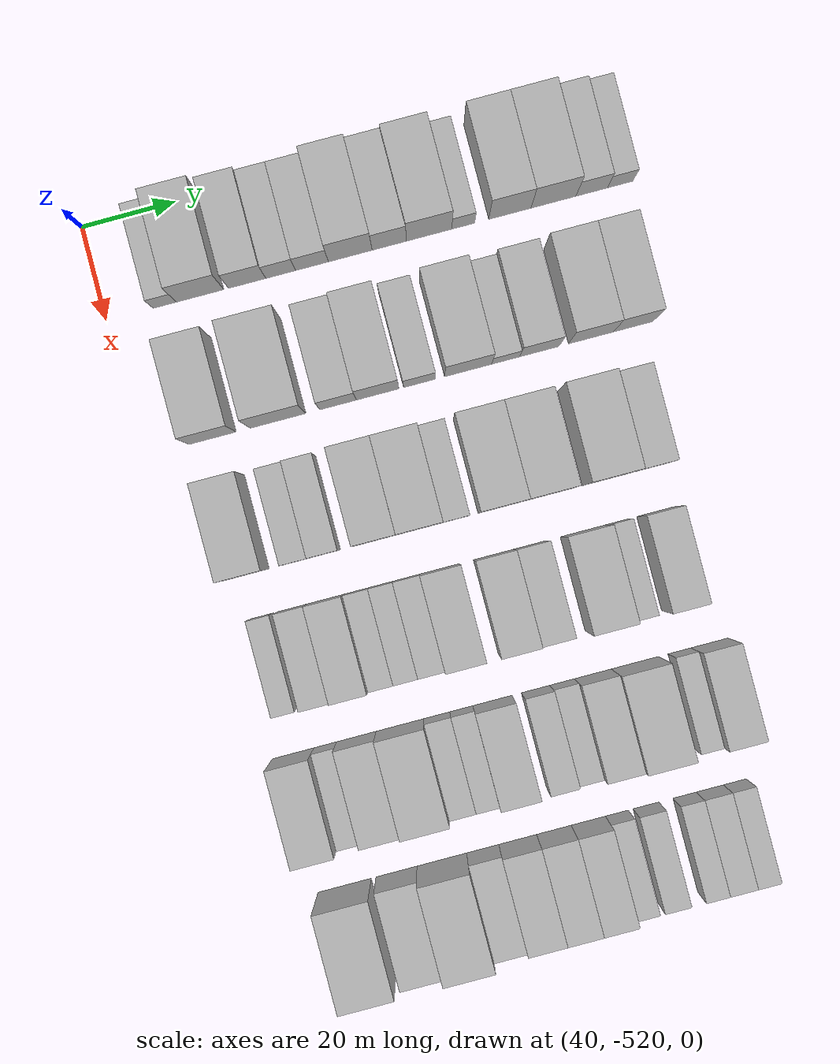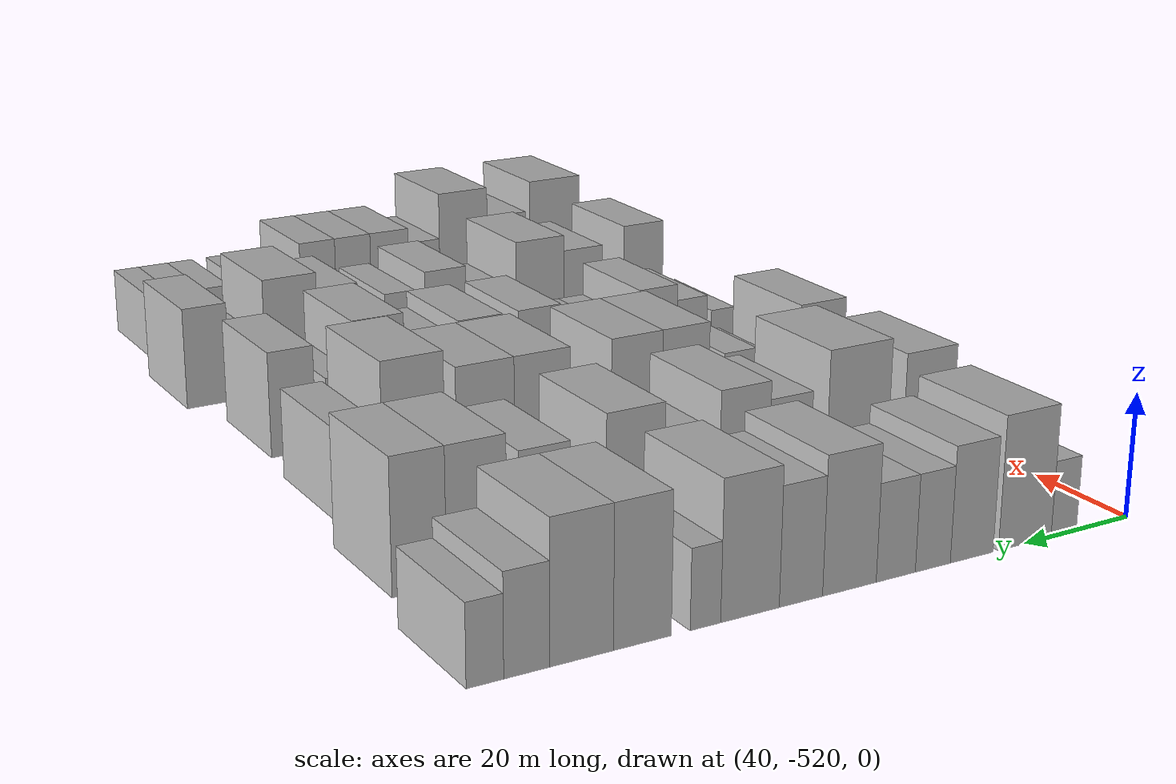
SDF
<sdf version="1.6">
 <world name="default">
  <model name="building_1">
   <static>1</static>
   <pose>50.0000 -507.5229 0 0.000000 0.000000 0.000000</pose>
   <link name="link">
    <pose>0 0 6.00 0 0 0</pose>
    <collision name="collision"><geometry><box><size>20.0000 4.9541 12.0000</size></box></geometry></collision>
    <visual name="visual">
     <cast_shadows>0</cast_shadows>
     <geometry><box><size>20.0000 4.9541 12.0000</size></box></geometry>
     <material>
      <script>
       <uri>model://HANNAS_wall/materials/scripts</uri>
       <uri>model://HANNAS_wall/materials/textures</uri>
       <name>vrc/HANNAS_wall</name>
      </script>
     </material>
    </visual>
   </link>
  </model>
  <model name="building_2">
   <static>1</static>
   <pose>50.0000 -499.9958 0 0.000000 0.000000 0.000000</pose>
   <link name="link">
    <pose>0 0 10.50 0 0 0</pose>
    <collision name="collision"><geometry><box><size>20.0000 10.1001 21.0000</size></box></geometry></collision>
    <visual name="visual">
     <cast_shadows>0</cast_shadows>
     <geometry><box><size>20.0000 10.1001 21.0000</size></box></geometry>
     <material>
      <script>
       <uri>model://HANNAS_wall/materials/scripts</uri>
       <uri>model://HANNAS_wall/materials/textures</uri>
       <name>vrc/HANNAS_wall</name>
      </script>
     </material>
    </visual>
   </link>
  </model>
  <model name="building_3">
   <static>1</static>
   <pose>50.0000 -489.9650 0 0.000000 0.000000 0.000000</pose>
   <link name="link">
    <pose>0 0 9.00 0 0 0</pose>
    <collision name="collision"><geometry><box><size>20.0000 7.9614 18.0000</size></box></geometry></collision>
    <visual name="visual">
     <cast_shadows>0</cast_shadows>
     <geometry><box><size>20.0000 7.9614 18.0000</size></box></geometry>
     <material>
      <script>
       <uri>model://HANNAS_wall/materials/scripts</uri>
       <uri>model://HANNAS_wall/materials/textures</uri>
       <name>vrc/HANNAS_wall</name>
      </script>
     </material>
    </visual>
   </link>
  </model>
  <model name="building_4">
   <static>1</static>
   <pose>50.0000 -482.8077 0 0.000000 0.000000 0.000000</pose>
   <link name="link">
    <pose>0 0 7.50 0 0 0</pose>
    <collision name="collision"><geometry><box><size>20.0000 6.3533 15.0000</size></box></geometry></collision>
    <visual name="visual">
     <cast_shadows>0</cast_shadows>
     <geometry><box><size>20.0000 6.3533 15.0000</size></box></geometry>
     <material>
      <script>
       <uri>model://HANNAS_wall/materials/scripts</uri>
       <uri>model://HANNAS_wall/materials/textures</uri>
       <name>vrc/HANNAS_wall</name>
      </script>
     </material>
    </visual>
   </link>
  </model>
  <model name="building_5">
   <static>1</static>
   <pose>50.0000 -476.1434 0 0.000000 0.000000 0.000000</pose>
   <link name="link">
    <pose>0 0 7.50 0 0 0</pose>
    <collision name="collision"><geometry><box><size>20.0000 6.9753 15.0000</size></box></geometry></collision>
    <visual name="visual">
     <cast_shadows>0</cast_shadows>
     <geometry><box><size>20.0000 6.9753 15.0000</size></box></geometry>
     <material>
      <script>
       <uri>model://HANNAS_wall/materials/scripts</uri>
       <uri>model://HANNAS_wall/materials/textures</uri>
       <name>vrc/HANNAS_wall</name>
      </script>
     </material>
    </visual>
   </link>
  </model>
  <model name="building_6">
   <static>1</static>
   <pose>50.0000 -468.0025 0 0.000000 0.000000 0.000000</pose>
   <link name="link">
    <pose>0 0 10.50 0 0 0</pose>
    <collision name="collision"><geometry><box><size>20.0000 9.3064 21.0000</size></box></geometry></collision>
    <visual name="visual">
     <cast_shadows>0</cast_shadows>
     <geometry><box><size>20.0000 9.3064 21.0000</size></box></geometry>
     <material>
      <script>
       <uri>model://HANNAS_wall/materials/scripts</uri>
       <uri>model://HANNAS_wall/materials/textures</uri>
       <name>vrc/HANNAS_wall</name>
      </script>
     </material>
    </visual>
   </link>
  </model>
  <model name="building_7">
   <static>1</static>
   <pose>50.0000 -459.6872 0 0.000000 0.000000 0.000000</pose>
   <link name="link">
    <pose>0 0 9.00 0 0 0</pose>
    <collision name="collision"><geometry><box><size>20.0000 7.3243 18.0000</size></box></geometry></collision>
    <visual name="visual">
     <cast_shadows>0</cast_shadows>
     <geometry><box><size>20.0000 7.3243 18.0000</size></box></geometry>
     <material>
      <script>
       <uri>model://HANNAS_wall/materials/scripts</uri>
       <uri>model://HANNAS_wall/materials/textures</uri>
       <name>vrc/HANNAS_wall</name>
      </script>
     </material>
    </visual>
   </link>
  </model>
  <model name="building_8">
   <static>1</static>
   <pose>50.0000 -451.2077 0 0.000000 0.000000 0.000000</pose>
   <link name="link">
    <pose>0 0 10.50 0 0 0</pose>
    <collision name="collision"><geometry><box><size>20.0000 9.6346 21.0000</size></box></geometry></collision>
    <visual name="visual">
     <cast_shadows>0</cast_shadows>
     <geometry><box><size>20.0000 9.6346 21.0000</size></box></geometry>
     <material>
      <script>
       <uri>model://HANNAS_wall/materials/scripts</uri>
       <uri>model://HANNAS_wall/materials/textures</uri>
       <name>vrc/HANNAS_wall</name>
      </script>
     </material>
    </visual>
   </link>
  </model>
  <model name="building_9">
   <static>1</static>
   <pose>50.0000 -443.9438 0 0.000000 0.000000 0.000000</pose>
   <link name="link">
    <pose>0 0 6.00 0 0 0</pose>
    <collision name="collision"><geometry><box><size>20.0000 4.8932 12.0000</size></box></geometry></collision>
    <visual name="visual">
     <cast_shadows>0</cast_shadows>
     <geometry><box><size>20.0000 4.8932 12.0000</size></box></geometry>
     <material>
      <script>
       <uri>model://HANNAS_wall/materials/scripts</uri>
       <uri>model://HANNAS_wall/materials/textures</uri>
       <name>vrc/HANNAS_wall</name>
      </script>
     </material>
    </visual>
   </link>
  </model>
  <model name="building_10">
   <static>1</static>
   <pose>50.0000 -434.0024 0 0.000000 0.000000 0.000000</pose>
   <link name="link">
    <pose>0 0 10.50 0 0 0</pose>
    <collision name="collision"><geometry><box><size>20.0000 8.9897 21.0000</size></box></geometry></collision>
    <visual name="visual">
     <cast_shadows>0</cast_shadows>
     <geometry><box><size>20.0000 8.9897 21.0000</size></box></geometry>
     <material>
      <script>
       <uri>model://HANNAS_wall/materials/scripts</uri>
       <uri>model://HANNAS_wall/materials/textures</uri>
       <name>vrc/HANNAS_wall</name>
      </script>
     </material>
    </visual>
   </link>
  </model>
  <model name="building_11">
   <static>1</static>
   <pose>50.0000 -424.7182 0 0.000000 0.000000 0.000000</pose>
   <link name="link">
    <pose>0 0 10.50 0 0 0</pose>
    <collision name="collision"><geometry><box><size>20.0000 9.5786 21.0000</size></box></geometry></collision>
    <visual name="visual">
     <cast_shadows>0</cast_shadows>
     <geometry><box><size>20.0000 9.5786 21.0000</size></box></geometry>
     <material>
      <script>
       <uri>model://HANNAS_wall/materials/scripts</uri>
       <uri>model://HANNAS_wall/materials/textures</uri>
       <name>vrc/HANNAS_wall</name>
      </script>
     </material>
    </visual>
   </link>
  </model>
  <model name="building_12">
   <static>1</static>
   <pose>50.0000 -416.5650 0 0.000000 0.000000 0.000000</pose>
   <link name="link">
    <pose>0 0 7.50 0 0 0</pose>
    <collision name="collision"><geometry><box><size>20.0000 6.7279 15.0000</size></box></geometry></collision>
    <visual name="visual">
     <cast_shadows>0</cast_shadows>
     <geometry><box><size>20.0000 6.7279 15.0000</size></box></geometry>
     <material>
      <script>
       <uri>model://HANNAS_wall/materials/scripts</uri>
       <uri>model://HANNAS_wall/materials/textures</uri>
       <name>vrc/HANNAS_wall</name>
      </script>
     </material>
    </visual>
   </link>
  </model>
  <model name="building_13">
   <static>1</static>
   <pose>50.0000 -410.5036 0 0.000000 0.000000 0.000000</pose>
   <link name="link">
    <pose>0 0 6.00 0 0 0</pose>
    <collision name="collision"><geometry><box><size>20.0000 5.3949 12.0000</size></box></geometry></collision>
    <visual name="visual">
     <cast_shadows>0</cast_shadows>
     <geometry><box><size>20.0000 5.3949 12.0000</size></box></geometry>
     <material>
      <script>
       <uri>model://HANNAS_wall/materials/scripts</uri>
       <uri>model://HANNAS_wall/materials/textures</uri>
       <name>vrc/HANNAS_wall</name>
      </script>
     </material>
    </visual>
   </link>
  </model>
  <model name="building_121">
   <static>1</static>
   <pose>79.0000 -504.9951 0 0.000000 0.000000 0.000000</pose>
   <link name="link">
    <pose>0 0 10.50 0 0 0</pose>
    <collision name="collision"><geometry><box><size>20.0000 10.0098 21.0000</size></box></geometry></collision>
    <visual name="visual">
     <cast_shadows>0</cast_shadows>
     <geometry><box><size>20.0000 10.0098 21.0000</size></box></geometry>
     <material>
      <script>
       <uri>model://HANNAS_wall/materials/scripts</uri>
       <uri>model://HANNAS_wall/materials/textures</uri>
       <name>vrc/HANNAS_wall</name>
      </script>
     </material>
    </visual>
   </link>
  </model>
  <model name="building_122">
   <static>1</static>
   <pose>79.0000 -491.0582 0 0.000000 0.000000 0.000000</pose>
   <link name="link">
    <pose>0 0 12.00 0 0 0</pose>
    <collision name="collision"><geometry><box><size>20.0000 11.8640 24.0000</size></box></geometry></collision>
    <visual name="visual">
     <cast_shadows>0</cast_shadows>
     <geometry><box><size>20.0000 11.8640 24.0000</size></box></geometry>
     <material>
      <script>
       <uri>model://HANNAS_wall/materials/scripts</uri>
       <uri>model://HANNAS_wall/materials/textures</uri>
       <name>vrc/HANNAS_wall</name>
      </script>
     </material>
    </visual>
   </link>
  </model>
  <model name="building_123">
   <static>1</static>
   <pose>79.0000 -478.2333 0 0.000000 0.000000 0.000000</pose>
   <link name="link">
    <pose>0 0 9.00 0 0 0</pose>
    <collision name="collision"><geometry><box><size>20.0000 7.7858 18.0000</size></box></geometry></collision>
    <visual name="visual">
     <cast_shadows>0</cast_shadows>
     <geometry><box><size>20.0000 7.7858 18.0000</size></box></geometry>
     <material>
      <script>
       <uri>model://HANNAS_wall/materials/scripts</uri>
       <uri>model://HANNAS_wall/materials/textures</uri>
       <name>vrc/HANNAS_wall</name>
      </script>
     </material>
    </visual>
   </link>
  </model>
  <model name="building_124">
   <static>1</static>
   <pose>79.0000 -469.8280 0 0.000000 0.000000 0.000000</pose>
   <link name="link">
    <pose>0 0 10.50 0 0 0</pose>
    <collision name="collision"><geometry><box><size>20.0000 9.0248 21.0000</size></box></geometry></collision>
    <visual name="visual">
     <cast_shadows>0</cast_shadows>
     <geometry><box><size>20.0000 9.0248 21.0000</size></box></geometry>
     <material>
      <script>
       <uri>model://HANNAS_wall/materials/scripts</uri>
       <uri>model://HANNAS_wall/materials/textures</uri>
       <name>vrc/HANNAS_wall</name>
      </script>
     </material>
    </visual>
   </link>
  </model>
  <model name="building_125">
   <static>1</static>
   <pose>79.0000 -460.9591 0 0.000000 0.000000 0.000000</pose>
   <link name="link">
    <pose>0 0 7.50 0 0 0</pose>
    <collision name="collision"><geometry><box><size>20.0000 6.7131 15.0000</size></box></geometry></collision>
    <visual name="visual">
     <cast_shadows>0</cast_shadows>
     <geometry><box><size>20.0000 6.7131 15.0000</size></box></geometry>
     <material>
      <script>
       <uri>model://HANNAS_wall/materials/scripts</uri>
       <uri>model://HANNAS_wall/materials/textures</uri>
       <name>vrc/HANNAS_wall</name>
      </script>
     </material>
    </visual>
   </link>
  </model>
  <model name="building_126">
   <static>1</static>
   <pose>79.0000 -450.5981 0 0.000000 0.000000 0.000000</pose>
   <link name="link">
    <pose>0 0 10.50 0 0 0</pose>
    <collision name="collision"><geometry><box><size>20.0000 10.0088 21.0000</size></box></geometry></collision>
    <visual name="visual">
     <cast_shadows>0</cast_shadows>
     <geometry><box><size>20.0000 10.0088 21.0000</size></box></geometry>
     <material>
      <script>
       <uri>model://HANNAS_wall/materials/scripts</uri>
       <uri>model://HANNAS_wall/materials/textures</uri>
       <name>vrc/HANNAS_wall</name>
      </script>
     </material>
    </visual>
   </link>
  </model>
  <model name="building_127">
   <static>1</static>
   <pose>79.0000 -442.6111 0 0.000000 0.000000 0.000000</pose>
   <link name="link">
    <pose>0 0 6.00 0 0 0</pose>
    <collision name="collision"><geometry><box><size>20.0000 5.9652 12.0000</size></box></geometry></collision>
    <visual name="visual">
     <cast_shadows>0</cast_shadows>
     <geometry><box><size>20.0000 5.9652 12.0000</size></box></geometry>
     <material>
      <script>
       <uri>model://HANNAS_wall/materials/scripts</uri>
       <uri>model://HANNAS_wall/materials/textures</uri>
       <name>vrc/HANNAS_wall</name>
      </script>
     </material>
    </visual>
   </link>
  </model>
  <model name="building_128">
   <static>1</static>
   <pose>79.0000 -435.4125 0 0.000000 0.000000 0.000000</pose>
   <link name="link">
    <pose>0 0 9.00 0 0 0</pose>
    <collision name="collision"><geometry><box><size>20.0000 8.4320 18.0000</size></box></geometry></collision>
    <visual name="visual">
     <cast_shadows>0</cast_shadows>
     <geometry><box><size>20.0000 8.4320 18.0000</size></box></geometry>
     <material>
      <script>
       <uri>model://HANNAS_wall/materials/scripts</uri>
       <uri>model://HANNAS_wall/materials/textures</uri>
       <name>vrc/HANNAS_wall</name>
      </script>
     </material>
    </visual>
   </link>
  </model>
  <model name="building_129">
   <static>1</static>
   <pose>79.0000 -424.3996 0 0.000000 0.000000 0.000000</pose>
   <link name="link">
    <pose>0 0 10.50 0 0 0</pose>
    <collision name="collision"><geometry><box><size>20.0000 9.5937 21.0000</size></box></geometry></collision>
    <visual name="visual">
     <cast_shadows>0</cast_shadows>
     <geometry><box><size>20.0000 9.5937 21.0000</size></box></geometry>
     <material>
      <script>
       <uri>model://HANNAS_wall/materials/scripts</uri>
       <uri>model://HANNAS_wall/materials/textures</uri>
       <name>vrc/HANNAS_wall</name>
      </script>
     </material>
    </visual>
   </link>
  </model>
  <model name="building_130">
   <static>1</static>
   <pose>79.0000 -415.3789 0 0.000000 0.000000 0.000000</pose>
   <link name="link">
    <pose>0 0 10.50 0 0 0</pose>
    <collision name="collision"><geometry><box><size>20.0000 8.4477 21.0000</size></box></geometry></collision>
    <visual name="visual">
     <cast_shadows>0</cast_shadows>
     <geometry><box><size>20.0000 8.4477 21.0000</size></box></geometry>
     <material>
      <script>
       <uri>model://HANNAS_wall/materials/scripts</uri>
       <uri>model://HANNAS_wall/materials/textures</uri>
       <name>vrc/HANNAS_wall</name>
      </script>
     </material>
    </visual>
   </link>
  </model>
  <model name="building_237">
   <static>1</static>
   <pose>108.0000 -505.3140 0 0.000000 0.000000 0.000000</pose>
   <link name="link">
    <pose>0 0 10.50 0 0 0</pose>
    <collision name="collision"><geometry><box><size>20.0000 9.3721 21.0000</size></box></geometry></collision>
    <visual name="visual">
     <cast_shadows>0</cast_shadows>
     <geometry><box><size>20.0000 9.3721 21.0000</size></box></geometry>
     <material>
      <script>
       <uri>model://HANNAS_wall/materials/scripts</uri>
       <uri>model://HANNAS_wall/materials/textures</uri>
       <name>vrc/HANNAS_wall</name>
      </script>
     </material>
    </visual>
   </link>
  </model>
  <model name="building_238">
   <static>1</static>
   <pose>108.0000 -494.7205 0 0.000000 0.000000 0.000000</pose>
   <link name="link">
    <pose>0 0 6.00 0 0 0</pose>
    <collision name="collision"><geometry><box><size>20.0000 5.8149 12.0000</size></box></geometry></collision>
    <visual name="visual">
     <cast_shadows>0</cast_shadows>
     <geometry><box><size>20.0000 5.8149 12.0000</size></box></geometry>
     <material>
      <script>
       <uri>model://HANNAS_wall/materials/scripts</uri>
       <uri>model://HANNAS_wall/materials/textures</uri>
       <name>vrc/HANNAS_wall</name>
      </script>
     </material>
    </visual>
   </link>
  </model>
  <model name="building_239">
   <static>1</static>
   <pose>108.0000 -488.6256 0 0.000000 0.000000 0.000000</pose>
   <link name="link">
    <pose>0 0 7.50 0 0 0</pose>
    <collision name="collision"><geometry><box><size>20.0000 6.3748 15.0000</size></box></geometry></collision>
    <visual name="visual">
     <cast_shadows>0</cast_shadows>
     <geometry><box><size>20.0000 6.3748 15.0000</size></box></geometry>
     <material>
      <script>
       <uri>model://HANNAS_wall/materials/scripts</uri>
       <uri>model://HANNAS_wall/materials/textures</uri>
       <name>vrc/HANNAS_wall</name>
      </script>
     </material>
    </visual>
   </link>
  </model>
  <model name="building_240">
   <static>1</static>
   <pose>108.0000 -477.9311 0 0.000000 0.000000 0.000000</pose>
   <link name="link">
    <pose>0 0 10.50 0 0 0</pose>
    <collision name="collision"><geometry><box><size>20.0000 9.0142 21.0000</size></box></geometry></collision>
    <visual name="visual">
     <cast_shadows>0</cast_shadows>
     <geometry><box><size>20.0000 9.0142 21.0000</size></box></geometry>
     <material>
      <script>
       <uri>model://HANNAS_wall/materials/scripts</uri>
       <uri>model://HANNAS_wall/materials/textures</uri>
       <name>vrc/HANNAS_wall</name>
      </script>
     </material>
    </visual>
   </link>
  </model>
  <model name="building_241">
   <static>1</static>
   <pose>108.0000 -468.5965 0 0.000000 0.000000 0.000000</pose>
   <link name="link">
    <pose>0 0 10.50 0 0 0</pose>
    <collision name="collision"><geometry><box><size>20.0000 9.6549 21.0000</size></box></geometry></collision>
    <visual name="visual">
     <cast_shadows>0</cast_shadows>
     <geometry><box><size>20.0000 9.6549 21.0000</size></box></geometry>
     <material>
      <script>
       <uri>model://HANNAS_wall/materials/scripts</uri>
       <uri>model://HANNAS_wall/materials/textures</uri>
       <name>vrc/HANNAS_wall</name>
      </script>
     </material>
    </visual>
   </link>
  </model>
  <model name="building_242">
   <static>1</static>
   <pose>108.0000 -460.9574 0 0.000000 0.000000 0.000000</pose>
   <link name="link">
    <pose>0 0 6.00 0 0 0</pose>
    <collision name="collision"><geometry><box><size>20.0000 5.6233 12.0000</size></box></geometry></collision>
    <visual name="visual">
     <cast_shadows>0</cast_shadows>
     <geometry><box><size>20.0000 5.6233 12.0000</size></box></geometry>
     <material>
      <script>
       <uri>model://HANNAS_wall/materials/scripts</uri>
       <uri>model://HANNAS_wall/materials/textures</uri>
       <name>vrc/HANNAS_wall</name>
      </script>
     </material>
    </visual>
   </link>
  </model>
  <model name="building_243">
   <static>1</static>
   <pose>108.0000 -451.1342 0 0.000000 0.000000 0.000000</pose>
   <link name="link">
    <pose>0 0 10.50 0 0 0</pose>
    <collision name="collision"><geometry><box><size>20.0000 10.0233 21.0000</size></box></geometry></collision>
    <visual name="visual">
     <cast_shadows>0</cast_shadows>
     <geometry><box><size>20.0000 10.0233 21.0000</size></box></geometry>
     <material>
      <script>
       <uri>model://HANNAS_wall/materials/scripts</uri>
       <uri>model://HANNAS_wall/materials/textures</uri>
       <name>vrc/HANNAS_wall</name>
      </script>
     </material>
    </visual>
   </link>
  </model>
  <model name="building_244">
   <static>1</static>
   <pose>108.0000 -441.0315 0 0.000000 0.000000 0.000000</pose>
   <link name="link">
    <pose>0 0 10.50 0 0 0</pose>
    <collision name="collision"><geometry><box><size>20.0000 10.1822 21.0000</size></box></geometry></collision>
    <visual name="visual">
     <cast_shadows>0</cast_shadows>
     <geometry><box><size>20.0000 10.1822 21.0000</size></box></geometry>
     <material>
      <script>
       <uri>model://HANNAS_wall/materials/scripts</uri>
       <uri>model://HANNAS_wall/materials/textures</uri>
       <name>vrc/HANNAS_wall</name>
      </script>
     </material>
    </visual>
   </link>
  </model>
  <model name="building_245">
   <static>1</static>
   <pose>108.0000 -428.6628 0 0.000000 0.000000 0.000000</pose>
   <link name="link">
    <pose>0 0 12.00 0 0 0</pose>
    <collision name="collision"><geometry><box><size>20.0000 10.5551 24.0000</size></box></geometry></collision>
    <visual name="visual">
     <cast_shadows>0</cast_shadows>
     <geometry><box><size>20.0000 10.5551 24.0000</size></box></geometry>
     <material>
      <script>
       <uri>model://HANNAS_wall/materials/scripts</uri>
       <uri>model://HANNAS_wall/materials/textures</uri>
       <name>vrc/HANNAS_wall</name>
      </script>
     </material>
    </visual>
   </link>
  </model>
  <model name="building_246">
   <static>1</static>
   <pose>108.0000 -418.8435 0 0.000000 0.000000 0.000000</pose>
   <link name="link">
    <pose>0 0 7.50 0 0 0</pose>
    <collision name="collision"><geometry><box><size>20.0000 7.0836 15.0000</size></box></geometry></collision>
    <visual name="visual">
     <cast_shadows>0</cast_shadows>
     <geometry><box><size>20.0000 7.0836 15.0000</size></box></geometry>
     <material>
      <script>
       <uri>model://HANNAS_wall/materials/scripts</uri>
       <uri>model://HANNAS_wall/materials/textures</uri>
       <name>vrc/HANNAS_wall</name>
      </script>
     </material>
    </visual>
   </link>
  </model>
  <model name="building_353">
   <static>1</static>
   <pose>137.0000 -504.5582 0 0.000000 0.000000 0.000000</pose>
   <link name="link">
    <pose>0 0 6.00 0 0 0</pose>
    <collision name="collision"><geometry><box><size>20.0000 4.8837 12.0000</size></box></geometry></collision>
    <visual name="visual">
     <cast_shadows>0</cast_shadows>
     <geometry><box><size>20.0000 4.8837 12.0000</size></box></geometry>
     <material>
      <script>
       <uri>model://HANNAS_wall/materials/scripts</uri>
       <uri>model://HANNAS_wall/materials/textures</uri>
       <name>vrc/HANNAS_wall</name>
      </script>
     </material>
    </visual>
   </link>
  </model>
  <model name="building_354">
   <static>1</static>
   <pose>137.0000 -497.9300 0 0.000000 0.000000 0.000000</pose>
   <link name="link">
    <pose>0 0 7.50 0 0 0</pose>
    <collision name="collision"><geometry><box><size>20.0000 6.3728 15.0000</size></box></geometry></collision>
    <visual name="visual">
     <cast_shadows>0</cast_shadows>
     <geometry><box><size>20.0000 6.3728 15.0000</size></box></geometry>
     <material>
      <script>
       <uri>model://HANNAS_wall/materials/scripts</uri>
       <uri>model://HANNAS_wall/materials/textures</uri>
       <name>vrc/HANNAS_wall</name>
      </script>
     </material>
    </visual>
   </link>
  </model>
  <model name="building_355">
   <static>1</static>
   <pose>137.0000 -490.8542 0 0.000000 0.000000 0.000000</pose>
   <link name="link">
    <pose>0 0 9.00 0 0 0</pose>
    <collision name="collision"><geometry><box><size>20.0000 7.7787 18.0000</size></box></geometry></collision>
    <visual name="visual">
     <cast_shadows>0</cast_shadows>
     <geometry><box><size>20.0000 7.7787 18.0000</size></box></geometry>
     <material>
      <script>
       <uri>model://HANNAS_wall/materials/scripts</uri>
       <uri>model://HANNAS_wall/materials/textures</uri>
       <name>vrc/HANNAS_wall</name>
      </script>
     </material>
    </visual>
   </link>
  </model>
  <model name="building_356">
   <static>1</static>
   <pose>137.0000 -484.3512 0 0.000000 0.000000 0.000000</pose>
   <link name="link">
    <pose>0 0 6.00 0 0 0</pose>
    <collision name="collision"><geometry><box><size>20.0000 5.2274 12.0000</size></box></geometry></collision>
    <visual name="visual">
     <cast_shadows>0</cast_shadows>
     <geometry><box><size>20.0000 5.2274 12.0000</size></box></geometry>
     <material>
      <script>
       <uri>model://HANNAS_wall/materials/scripts</uri>
       <uri>model://HANNAS_wall/materials/textures</uri>
       <name>vrc/HANNAS_wall</name>
      </script>
     </material>
    </visual>
   </link>
  </model>
  <model name="building_357">
   <static>1</static>
   <pose>137.0000 -479.1863 0 0.000000 0.000000 0.000000</pose>
   <link name="link">
    <pose>0 0 6.00 0 0 0</pose>
    <collision name="collision"><geometry><box><size>20.0000 5.1023 12.0000</size></box></geometry></collision>
    <visual name="visual">
     <cast_shadows>0</cast_shadows>
     <geometry><box><size>20.0000 5.1023 12.0000</size></box></geometry>
     <material>
      <script>
       <uri>model://HANNAS_wall/materials/scripts</uri>
       <uri>model://HANNAS_wall/materials/textures</uri>
       <name>vrc/HANNAS_wall</name>
      </script>
     </material>
    </visual>
   </link>
  </model>
  <model name="building_358">
   <static>1</static>
   <pose>137.0000 -473.8029 0 0.000000 0.000000 0.000000</pose>
   <link name="link">
    <pose>0 0 6.00 0 0 0</pose>
    <collision name="collision"><geometry><box><size>20.0000 5.6645 12.0000</size></box></geometry></collision>
    <visual name="visual">
     <cast_shadows>0</cast_shadows>
     <geometry><box><size>20.0000 5.6645 12.0000</size></box></geometry>
     <material>
      <script>
       <uri>model://HANNAS_wall/materials/scripts</uri>
       <uri>model://HANNAS_wall/materials/textures</uri>
       <name>vrc/HANNAS_wall</name>
      </script>
     </material>
    </visual>
   </link>
  </model>
  <model name="building_359">
   <static>1</static>
   <pose>137.0000 -466.7512 0 0.000000 0.000000 0.000000</pose>
   <link name="link">
    <pose>0 0 9.00 0 0 0</pose>
    <collision name="collision"><geometry><box><size>20.0000 8.4388 18.0000</size></box></geometry></collision>
    <visual name="visual">
     <cast_shadows>0</cast_shadows>
     <geometry><box><size>20.0000 8.4388 18.0000</size></box></geometry>
     <material>
      <script>
       <uri>model://HANNAS_wall/materials/scripts</uri>
       <uri>model://HANNAS_wall/materials/textures</uri>
       <name>vrc/HANNAS_wall</name>
      </script>
     </material>
    </visual>
   </link>
  </model>
  <model name="building_360">
   <static>1</static>
   <pose>137.0000 -455.3264 0 0.000000 0.000000 0.000000</pose>
   <link name="link">
    <pose>0 0 9.00 0 0 0</pose>
    <collision name="collision"><geometry><box><size>20.0000 8.4108 18.0000</size></box></geometry></collision>
    <visual name="visual">
     <cast_shadows>0</cast_shadows>
     <geometry><box><size>20.0000 8.4108 18.0000</size></box></geometry>
     <material>
      <script>
       <uri>model://HANNAS_wall/materials/scripts</uri>
       <uri>model://HANNAS_wall/materials/textures</uri>
       <name>vrc/HANNAS_wall</name>
      </script>
     </material>
    </visual>
   </link>
  </model>
  <model name="building_361">
   <static>1</static>
   <pose>137.0000 -447.5767 0 0.000000 0.000000 0.000000</pose>
   <link name="link">
    <pose>0 0 7.50 0 0 0</pose>
    <collision name="collision"><geometry><box><size>20.0000 7.0886 15.0000</size></box></geometry></collision>
    <visual name="visual">
     <cast_shadows>0</cast_shadows>
     <geometry><box><size>20.0000 7.0886 15.0000</size></box></geometry>
     <material>
      <script>
       <uri>model://HANNAS_wall/materials/scripts</uri>
       <uri>model://HANNAS_wall/materials/textures</uri>
       <name>vrc/HANNAS_wall</name>
      </script>
     </material>
    </visual>
   </link>
  </model>
  <model name="building_362">
   <static>1</static>
   <pose>137.0000 -436.3723 0 0.000000 0.000000 0.000000</pose>
   <link name="link">
    <pose>0 0 10.50 0 0 0</pose>
    <collision name="collision"><geometry><box><size>20.0000 9.3204 21.0000</size></box></geometry></collision>
    <visual name="visual">
     <cast_shadows>0</cast_shadows>
     <geometry><box><size>20.0000 9.3204 21.0000</size></box></geometry>
     <material>
      <script>
       <uri>model://HANNAS_wall/materials/scripts</uri>
       <uri>model://HANNAS_wall/materials/textures</uri>
       <name>vrc/HANNAS_wall</name>
      </script>
     </material>
    </visual>
   </link>
  </model>
  <model name="building_363">
   <static>1</static>
   <pose>137.0000 -429.2212 0 0.000000 0.000000 0.000000</pose>
   <link name="link">
    <pose>0 0 6.00 0 0 0</pose>
    <collision name="collision"><geometry><box><size>20.0000 4.9818 12.0000</size></box></geometry></collision>
    <visual name="visual">
     <cast_shadows>0</cast_shadows>
     <geometry><box><size>20.0000 4.9818 12.0000</size></box></geometry>
     <material>
      <script>
       <uri>model://HANNAS_wall/materials/scripts</uri>
       <uri>model://HANNAS_wall/materials/textures</uri>
       <name>vrc/HANNAS_wall</name>
      </script>
     </material>
    </visual>
   </link>
  </model>
  <model name="building_364">
   <static>1</static>
   <pose>137.0000 -420.7906 0 0.000000 0.000000 0.000000</pose>
   <link name="link">
    <pose>0 0 9.00 0 0 0</pose>
    <collision name="collision"><geometry><box><size>20.0000 7.8792 18.0000</size></box></geometry></collision>
    <visual name="visual">
     <cast_shadows>0</cast_shadows>
     <geometry><box><size>20.0000 7.8792 18.0000</size></box></geometry>
     <material>
      <script>
       <uri>model://HANNAS_wall/materials/scripts</uri>
       <uri>model://HANNAS_wall/materials/textures</uri>
       <name>vrc/HANNAS_wall</name>
      </script>
     </material>
    </visual>
   </link>
  </model>
  <model name="building_461">
   <static>1</static>
   <pose>166.0000 -505.5836 0 0.000000 0.000000 0.000000</pose>
   <link name="link">
    <pose>0 0 10.50 0 0 0</pose>
    <collision name="collision"><geometry><box><size>20.0000 8.8328 21.0000</size></box></geometry></collision>
    <visual name="visual">
     <cast_shadows>0</cast_shadows>
     <geometry><box><size>20.0000 8.8328 21.0000</size></box></geometry>
     <material>
      <script>
       <uri>model://HANNAS_wall/materials/scripts</uri>
       <uri>model://HANNAS_wall/materials/textures</uri>
       <name>vrc/HANNAS_wall</name>
      </script>
     </material>
    </visual>
   </link>
  </model>
  <model name="building_462">
   <static>1</static>
   <pose>166.0000 -498.7571 0 0.000000 0.000000 0.000000</pose>
   <link name="link">
    <pose>0 0 6.00 0 0 0</pose>
    <collision name="collision"><geometry><box><size>20.0000 4.8202 12.0000</size></box></geometry></collision>
    <visual name="visual">
     <cast_shadows>0</cast_shadows>
     <geometry><box><size>20.0000 4.8202 12.0000</size></box></geometry>
     <material>
      <script>
       <uri>model://HANNAS_wall/materials/scripts</uri>
       <uri>model://HANNAS_wall/materials/textures</uri>
       <name>vrc/HANNAS_wall</name>
      </script>
     </material>
    </visual>
   </link>
  </model>
  <model name="building_463">
   <static>1</static>
   <pose>166.0000 -492.1525 0 0.000000 0.000000 0.000000</pose>
   <link name="link">
    <pose>0 0 9.00 0 0 0</pose>
    <collision name="collision"><geometry><box><size>20.0000 8.3890 18.0000</size></box></geometry></collision>
    <visual name="visual">
     <cast_shadows>0</cast_shadows>
     <geometry><box><size>20.0000 8.3890 18.0000</size></box></geometry>
     <material>
      <script>
       <uri>model://HANNAS_wall/materials/scripts</uri>
       <uri>model://HANNAS_wall/materials/textures</uri>
       <name>vrc/HANNAS_wall</name>
      </script>
     </material>
    </visual>
   </link>
  </model>
  <model name="building_464">
   <static>1</static>
   <pose>166.0000 -482.8787 0 0.000000 0.000000 0.000000</pose>
   <link name="link">
    <pose>0 0 10.50 0 0 0</pose>
    <collision name="collision"><geometry><box><size>20.0000 10.1585 21.0000</size></box></geometry></collision>
    <visual name="visual">
     <cast_shadows>0</cast_shadows>
     <geometry><box><size>20.0000 10.1585 21.0000</size></box></geometry>
     <material>
      <script>
       <uri>model://HANNAS_wall/materials/scripts</uri>
       <uri>model://HANNAS_wall/materials/textures</uri>
       <name>vrc/HANNAS_wall</name>
      </script>
     </material>
    </visual>
   </link>
  </model>
  <model name="building_465">
   <static>1</static>
   <pose>166.0000 -475.0251 0 0.000000 0.000000 0.000000</pose>
   <link name="link">
    <pose>0 0 6.00 0 0 0</pose>
    <collision name="collision"><geometry><box><size>20.0000 5.5489 12.0000</size></box></geometry></collision>
    <visual name="visual">
     <cast_shadows>0</cast_shadows>
     <geometry><box><size>20.0000 5.5489 12.0000</size></box></geometry>
     <material>
      <script>
       <uri>model://HANNAS_wall/materials/scripts</uri>
       <uri>model://HANNAS_wall/materials/textures</uri>
       <name>vrc/HANNAS_wall</name>
      </script>
     </material>
    </visual>
   </link>
  </model>
  <model name="building_466">
   <static>1</static>
   <pose>166.0000 -469.8018 0 0.000000 0.000000 0.000000</pose>
   <link name="link">
    <pose>0 0 6.00 0 0 0</pose>
    <collision name="collision"><geometry><box><size>20.0000 4.8977 12.0000</size></box></geometry></collision>
    <visual name="visual">
     <cast_shadows>0</cast_shadows>
     <geometry><box><size>20.0000 4.8977 12.0000</size></box></geometry>
     <material>
      <script>
       <uri>model://HANNAS_wall/materials/scripts</uri>
       <uri>model://HANNAS_wall/materials/textures</uri>
       <name>vrc/HANNAS_wall</name>
      </script>
     </material>
    </visual>
   </link>
  </model>
  <model name="building_467">
   <static>1</static>
   <pose>166.0000 -463.1756 0 0.000000 0.000000 0.000000</pose>
   <link name="link">
    <pose>0 0 9.00 0 0 0</pose>
    <collision name="collision"><geometry><box><size>20.0000 8.3546 18.0000</size></box></geometry></collision>
    <visual name="visual">
     <cast_shadows>0</cast_shadows>
     <geometry><box><size>20.0000 8.3546 18.0000</size></box></geometry>
     <material>
      <script>
       <uri>model://HANNAS_wall/materials/scripts</uri>
       <uri>model://HANNAS_wall/materials/textures</uri>
       <name>vrc/HANNAS_wall</name>
      </script>
     </material>
    </visual>
   </link>
  </model>
  <model name="building_468">
   <static>1</static>
   <pose>166.0000 -453.9722 0 0.000000 0.000000 0.000000</pose>
   <link name="link">
    <pose>0 0 7.50 0 0 0</pose>
    <collision name="collision"><geometry><box><size>20.0000 6.0522 15.0000</size></box></geometry></collision>
    <visual name="visual">
     <cast_shadows>0</cast_shadows>
     <geometry><box><size>20.0000 6.0522 15.0000</size></box></geometry>
     <material>
      <script>
       <uri>model://HANNAS_wall/materials/scripts</uri>
       <uri>model://HANNAS_wall/materials/textures</uri>
       <name>vrc/HANNAS_wall</name>
      </script>
     </material>
    </visual>
   </link>
  </model>
  <model name="building_469">
   <static>1</static>
   <pose>166.0000 -448.3168 0 0.000000 0.000000 0.000000</pose>
   <link name="link">
    <pose>0 0 6.00 0 0 0</pose>
    <collision name="collision"><geometry><box><size>20.0000 5.2585 12.0000</size></box></geometry></collision>
    <visual name="visual">
     <cast_shadows>0</cast_shadows>
     <geometry><box><size>20.0000 5.2585 12.0000</size></box></geometry>
     <material>
      <script>
       <uri>model://HANNAS_wall/materials/scripts</uri>
       <uri>model://HANNAS_wall/materials/textures</uri>
       <name>vrc/HANNAS_wall</name>
      </script>
     </material>
    </visual>
   </link>
  </model>
  <model name="building_470">
   <static>1</static>
   <pose>166.0000 -441.7625 0 0.000000 0.000000 0.000000</pose>
   <link name="link">
    <pose>0 0 9.00 0 0 0</pose>
    <collision name="collision"><geometry><box><size>20.0000 7.8501 18.0000</size></box></geometry></collision>
    <visual name="visual">
     <cast_shadows>0</cast_shadows>
     <geometry><box><size>20.0000 7.8501 18.0000</size></box></geometry>
     <material>
      <script>
       <uri>model://HANNAS_wall/materials/scripts</uri>
       <uri>model://HANNAS_wall/materials/textures</uri>
       <name>vrc/HANNAS_wall</name>
      </script>
     </material>
    </visual>
   </link>
  </model>
  <model name="building_471">
   <static>1</static>
   <pose>166.0000 -432.7940 0 0.000000 0.000000 0.000000</pose>
   <link name="link">
    <pose>0 0 10.50 0 0 0</pose>
    <collision name="collision"><geometry><box><size>20.0000 10.0868 21.0000</size></box></geometry></collision>
    <visual name="visual">
     <cast_shadows>0</cast_shadows>
     <geometry><box><size>20.0000 10.0868 21.0000</size></box></geometry>
     <material>
      <script>
       <uri>model://HANNAS_wall/materials/scripts</uri>
       <uri>model://HANNAS_wall/materials/textures</uri>
       <name>vrc/HANNAS_wall</name>
      </script>
     </material>
    </visual>
   </link>
  </model>
  <model name="building_472">
   <static>1</static>
   <pose>166.0000 -423.3414 0 0.000000 0.000000 0.000000</pose>
   <link name="link">
    <pose>0 0 6.00 0 0 0</pose>
    <collision name="collision"><geometry><box><size>20.0000 4.8183 12.0000</size></box></geometry></collision>
    <visual name="visual">
     <cast_shadows>0</cast_shadows>
     <geometry><box><size>20.0000 4.8183 12.0000</size></box></geometry>
     <material>
      <script>
       <uri>model://HANNAS_wall/materials/scripts</uri>
       <uri>model://HANNAS_wall/materials/textures</uri>
       <name>vrc/HANNAS_wall</name>
      </script>
     </material>
    </visual>
   </link>
  </model>
  <model name="building_473">
   <static>1</static>
   <pose>166.0000 -416.9739 0 0.000000 0.000000 0.000000</pose>
   <link name="link">
    <pose>0 0 9.00 0 0 0</pose>
    <collision name="collision"><geometry><box><size>20.0000 7.9167 18.0000</size></box></geometry></collision>
    <visual name="visual">
     <cast_shadows>0</cast_shadows>
     <geometry><box><size>20.0000 7.9167 18.0000</size></box></geometry>
     <material>
      <script>
       <uri>model://HANNAS_wall/materials/scripts</uri>
       <uri>model://HANNAS_wall/materials/textures</uri>
       <name>vrc/HANNAS_wall</name>
      </script>
     </material>
    </visual>
   </link>
  </model>
  <model name="building_583">
   <static>1</static>
   <pose>195.0000 -502.3287 0 0.000000 0.000000 0.000000</pose>
   <link name="link">
    <pose>0 0 12.00 0 0 0</pose>
    <collision name="collision"><geometry><box><size>20.0000 11.3426 24.0000</size></box></geometry></collision>
    <visual name="visual">
     <cast_shadows>0</cast_shadows>
     <geometry><box><size>20.0000 11.3426 24.0000</size></box></geometry>
     <material>
      <script>
       <uri>model://HANNAS_wall/materials/scripts</uri>
       <uri>model://HANNAS_wall/materials/textures</uri>
       <name>vrc/HANNAS_wall</name>
      </script>
     </material>
    </visual>
   </link>
  </model>
  <model name="building_584">
   <static>1</static>
   <pose>195.0000 -491.2999 0 0.000000 0.000000 0.000000</pose>
   <link name="link">
    <pose>0 0 9.00 0 0 0</pose>
    <collision name="collision"><geometry><box><size>20.0000 8.7151 18.0000</size></box></geometry></collision>
    <visual name="visual">
     <cast_shadows>0</cast_shadows>
     <geometry><box><size>20.0000 8.7151 18.0000</size></box></geometry>
     <material>
      <script>
       <uri>model://HANNAS_wall/materials/scripts</uri>
       <uri>model://HANNAS_wall/materials/textures</uri>
       <name>vrc/HANNAS_wall</name>
      </script>
     </material>
    </visual>
   </link>
  </model>
  <model name="building_585">
   <static>1</static>
   <pose>195.0000 -481.6416 0 0.000000 0.000000 0.000000</pose>
   <link name="link">
    <pose>0 0 12.00 0 0 0</pose>
    <collision name="collision"><geometry><box><size>20.0000 10.6015 24.0000</size></box></geometry></collision>
    <visual name="visual">
     <cast_shadows>0</cast_shadows>
     <geometry><box><size>20.0000 10.6015 24.0000</size></box></geometry>
     <material>
      <script>
       <uri>model://HANNAS_wall/materials/scripts</uri>
       <uri>model://HANNAS_wall/materials/textures</uri>
       <name>vrc/HANNAS_wall</name>
      </script>
     </material>
    </visual>
   </link>
  </model>
  <model name="building_586">
   <static>1</static>
   <pose>195.0000 -472.9202 0 0.000000 0.000000 0.000000</pose>
   <link name="link">
    <pose>0 0 7.50 0 0 0</pose>
    <collision name="collision"><geometry><box><size>20.0000 6.8412 15.0000</size></box></geometry></collision>
    <visual name="visual">
     <cast_shadows>0</cast_shadows>
     <geometry><box><size>20.0000 6.8412 15.0000</size></box></geometry>
     <material>
      <script>
       <uri>model://HANNAS_wall/materials/scripts</uri>
       <uri>model://HANNAS_wall/materials/textures</uri>
       <name>vrc/HANNAS_wall</name>
      </script>
     </material>
    </visual>
   </link>
  </model>
  <model name="building_587">
   <static>1</static>
   <pose>195.0000 -465.4784 0 0.000000 0.000000 0.000000</pose>
   <link name="link">
    <pose>0 0 9.00 0 0 0</pose>
    <collision name="collision"><geometry><box><size>20.0000 8.0425 18.0000</size></box></geometry></collision>
    <visual name="visual">
     <cast_shadows>0</cast_shadows>
     <geometry><box><size>20.0000 8.0425 18.0000</size></box></geometry>
     <material>
      <script>
       <uri>model://HANNAS_wall/materials/scripts</uri>
       <uri>model://HANNAS_wall/materials/textures</uri>
       <name>vrc/HANNAS_wall</name>
      </script>
     </material>
    </visual>
   </link>
  </model>
  <model name="building_588">
   <static>1</static>
   <pose>195.0000 -457.7516 0 0.000000 0.000000 0.000000</pose>
   <link name="link">
    <pose>0 0 9.00 0 0 0</pose>
    <collision name="collision"><geometry><box><size>20.0000 7.4110 18.0000</size></box></geometry></collision>
    <visual name="visual">
     <cast_shadows>0</cast_shadows>
     <geometry><box><size>20.0000 7.4110 18.0000</size></box></geometry>
     <material>
      <script>
       <uri>model://HANNAS_wall/materials/scripts</uri>
       <uri>model://HANNAS_wall/materials/textures</uri>
       <name>vrc/HANNAS_wall</name>
      </script>
     </material>
    </visual>
   </link>
  </model>
  <model name="building_589">
   <static>1</static>
   <pose>195.0000 -450.4072 0 0.000000 0.000000 0.000000</pose>
   <link name="link">
    <pose>0 0 9.00 0 0 0</pose>
    <collision name="collision"><geometry><box><size>20.0000 7.2779 18.0000</size></box></geometry></collision>
    <visual name="visual">
     <cast_shadows>0</cast_shadows>
     <geometry><box><size>20.0000 7.2779 18.0000</size></box></geometry>
     <material>
      <script>
       <uri>model://HANNAS_wall/materials/scripts</uri>
       <uri>model://HANNAS_wall/materials/textures</uri>
       <name>vrc/HANNAS_wall</name>
      </script>
     </material>
    </visual>
   </link>
  </model>
  <model name="building_590">
   <static>1</static>
   <pose>195.0000 -444.3226 0 0.000000 0.000000 0.000000</pose>
   <link name="link">
    <pose>0 0 6.00 0 0 0</pose>
    <collision name="collision"><geometry><box><size>20.0000 4.8911 12.0000</size></box></geometry></collision>
    <visual name="visual">
     <cast_shadows>0</cast_shadows>
     <geometry><box><size>20.0000 4.8911 12.0000</size></box></geometry>
     <material>
      <script>
       <uri>model://HANNAS_wall/materials/scripts</uri>
       <uri>model://HANNAS_wall/materials/textures</uri>
       <name>vrc/HANNAS_wall</name>
      </script>
     </material>
    </visual>
   </link>
  </model>
  <model name="building_591">
   <static>1</static>
   <pose>195.0000 -438.1251 0 0.000000 0.000000 0.000000</pose>
   <link name="link">
    <pose>0 0 6.00 0 0 0</pose>
    <collision name="collision"><geometry><box><size>20.0000 5.5040 12.0000</size></box></geometry></collision>
    <visual name="visual">
     <cast_shadows>0</cast_shadows>
     <geometry><box><size>20.0000 5.5040 12.0000</size></box></geometry>
     <material>
      <script>
       <uri>model://HANNAS_wall/materials/scripts</uri>
       <uri>model://HANNAS_wall/materials/textures</uri>
       <name>vrc/HANNAS_wall</name>
      </script>
     </material>
    </visual>
   </link>
  </model>
  <model name="building_592">
   <static>1</static>
   <pose>195.0000 -429.8872 0 0.000000 0.000000 0.000000</pose>
   <link name="link">
    <pose>0 0 6.00 0 0 0</pose>
    <collision name="collision"><geometry><box><size>20.0000 4.9718 12.0000</size></box></geometry></collision>
    <visual name="visual">
     <cast_shadows>0</cast_shadows>
     <geometry><box><size>20.0000 4.9718 12.0000</size></box></geometry>
     <material>
      <script>
       <uri>model://HANNAS_wall/materials/scripts</uri>
       <uri>model://HANNAS_wall/materials/textures</uri>
       <name>vrc/HANNAS_wall</name>
      </script>
     </material>
    </visual>
   </link>
  </model>
  <model name="building_593">
   <static>1</static>
   <pose>195.0000 -424.5169 0 0.000000 0.000000 0.000000</pose>
   <link name="link">
    <pose>0 0 6.00 0 0 0</pose>
    <collision name="collision"><geometry><box><size>20.0000 5.7688 12.0000</size></box></geometry></collision>
    <visual name="visual">
     <cast_shadows>0</cast_shadows>
     <geometry><box><size>20.0000 5.7688 12.0000</size></box></geometry>
     <material>
      <script>
       <uri>model://HANNAS_wall/materials/scripts</uri>
       <uri>model://HANNAS_wall/materials/textures</uri>
       <name>vrc/HANNAS_wall</name>
      </script>
     </material>
    </visual>
   </link>
  </model>
  <model name="building_594">
   <static>1</static>
   <pose>195.0000 -419.1939 0 0.000000 0.000000 0.000000</pose>
   <link name="link">
    <pose>0 0 6.00 0 0 0</pose>
    <collision name="collision"><geometry><box><size>20.0000 4.8773 12.0000</size></box></geometry></collision>
    <visual name="visual">
     <cast_shadows>0</cast_shadows>
     <geometry><box><size>20.0000 4.8773 12.0000</size></box></geometry>
     <material>
      <script>
       <uri>model://HANNAS_wall/materials/scripts</uri>
       <uri>model://HANNAS_wall/materials/textures</uri>
       <name>vrc/HANNAS_wall</name>
      </script>
     </material>
    </visual>
   </link>
  </model>
 </world>
</sdf>
